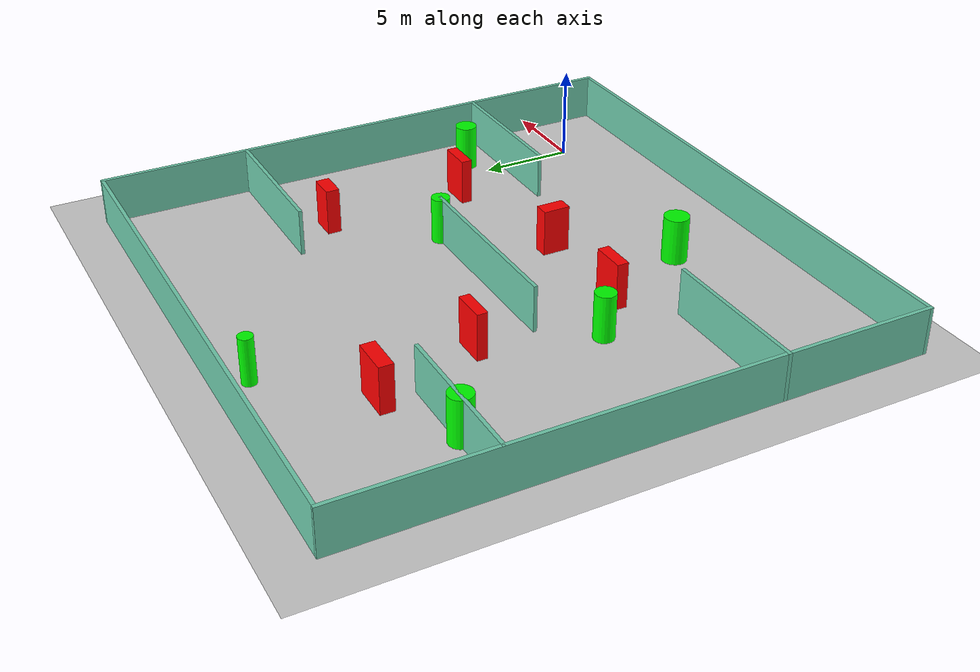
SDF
<sdf version="1.7">
 <world name="default">
  <light name="sun" type="directional">
   <pose>0 0 10 0 -0 0</pose>
   <diffuse>0.8 0.8 0.8 1</diffuse>
   <specular>0.2 0.2 0.2 1</specular>
   <attenuation>
    <range>1000</range>
    <constant>0.9</constant>
    <linear>0.01</linear>
    <quadratic>0.001</quadratic>
   </attenuation>
   <direction>-0.5 0.1 -0.9</direction>
   <spot><inner_angle>0</inner_angle><outer_angle>0</outer_angle><falloff>0</falloff></spot>
  </light>
  <model name="ground_plane">
   <static>1</static>
   <link name="link">
    <collision name="collision">
     <geometry><plane><normal>0 0 1</normal><size>100 100</size></plane></geometry>
     <surface>
      <contact><collide_bitmask>65535</collide_bitmask></contact>
      <friction><ode><mu>100</mu><mu2>50</mu2></ode></friction>
     </surface>
    </collision>
    <visual name="visual">
     <cast_shadows>0</cast_shadows>
     <geometry><plane><normal>0 0 1</normal><size>100 100</size></plane></geometry>
     <material>
      <script><uri>file://media/materials/scripts/gazebo.material</uri><name>Gazebo/Grey</name></script>
     </material>
    </visual>
   </link>
  </model>
  <gravity>0 0 -9.8</gravity>
  <magnetic_field>6e-06 2.3e-05 -4.2e-05</magnetic_field>
  <atmosphere type="adiabatic"/>
  <physics type="ode">
   <max_step_size>0.001</max_step_size>
   <real_time_factor>1</real_time_factor>
   <real_time_update_rate>1000</real_time_update_rate>
  </physics>
  <scene><ambient>0.4 0.4 0.4 1</ambient><background>0.7 0.7 0.7 1</background><shadows>1</shadows></scene>
  <spherical_coordinates>
   <surface_model>EARTH_WGS84</surface_model>
   <latitude_deg>0</latitude_deg>
   <longitude_deg>0</longitude_deg>
   <elevation>0</elevation>
   <heading_deg>0</heading_deg>
  </spherical_coordinates>
  <model name="my_base_walls">
   <link name="Wall_10">
    <collision name="Wall_10_Collision">
     <geometry><box><size>8.2 0.2 2.5</size></box></geometry>
     <pose>0 0 1.25 0 -0 0</pose>
    </collision>
    <visual name="Wall_10_Visual">
     <pose>0 0 1.25 0 -0 0</pose>
     <geometry><box><size>8.2 0.2 2.5</size></box></geometry>
     <material>
      <script><uri>file://media/materials/scripts/gazebo.material</uri><name>Gazebo/Grey</name></script>
      <ambient>0.435294 0.796078 0.67451 1</ambient>
     </material>
     <meta><layer>0</layer></meta>
    </visual>
    <pose>-11 -7 0 0 -0 0</pose>
   </link>
   <link name="Wall_12">
    <collision name="Wall_12_Collision">
     <geometry><box><size>8.2 0.2 2.5</size></box></geometry>
     <pose>0 0 1.25 0 -0 0</pose>
    </collision>
    <visual name="Wall_12_Visual">
     <pose>0 0 1.25 0 -0 0</pose>
     <geometry><box><size>8.2 0.2 2.5</size></box></geometry>
     <material>
      <script><uri>file://media/materials/scripts/gazebo.material</uri><name>Gazebo/Grey</name></script>
      <ambient>0.435294 0.796078 0.67451 1</ambient>
     </material>
     <meta><layer>0</layer></meta>
    </visual>
    <pose>-11 7 0 0 -0 0</pose>
   </link>
   <link name="Wall_14">
    <collision name="Wall_14_Collision">
     <geometry><box><size>8.2 0.2 2.5</size></box></geometry>
     <pose>0 0 1.25 0 -0 0</pose>
    </collision>
    <visual name="Wall_14_Visual">
     <pose>0 0 1.25 0 -0 0</pose>
     <geometry><box><size>8.2 0.2 2.5</size></box></geometry>
     <material>
      <script><uri>file://media/materials/scripts/gazebo.material</uri><name>Gazebo/Grey</name></script>
      <ambient>0.435294 0.796078 0.67451 1</ambient>
     </material>
     <meta><layer>0</layer></meta>
    </visual>
    <pose>11 7 0 0 -0 3.14159</pose>
   </link>
   <link name="Wall_16">
    <collision name="Wall_16_Collision">
     <geometry><box><size>10.2 0.2 2.5</size></box></geometry>
     <pose>0 0 1.25 0 -0 0</pose>
    </collision>
    <visual name="Wall_16_Visual">
     <pose>0 0 1.25 0 -0 0</pose>
     <geometry><box><size>10.2 0.2 2.5</size></box></geometry>
     <material>
      <script><uri>file://media/materials/scripts/gazebo.material</uri><name>Gazebo/Grey</name></script>
      <ambient>0.435294 0.796078 0.67451 1</ambient>
     </material>
     <meta><layer>0</layer></meta>
    </visual>
    <pose>0 0 0 0 -0 3.14159</pose>
   </link>
   <link name="Wall_2">
    <collision name="Wall_2_Collision">
     <geometry><box><size>30.2 0.2 2.5</size></box></geometry>
     <pose>0 0 1.25 0 -0 0</pose>
    </collision>
    <visual name="Wall_2_Visual">
     <pose>0 0 1.25 0 -0 0</pose>
     <geometry><box><size>30.2 0.2 2.5</size></box></geometry>
     <material>
      <script><uri>file://media/materials/scripts/gazebo.material</uri><name>Gazebo/Grey</name></script>
      <ambient>0.435294 0.796078 0.67451 1</ambient>
     </material>
     <meta><layer>0</layer></meta>
    </visual>
    <pose>0 -15 0 0 -0 3.14159</pose>
   </link>
   <link name="Wall_3">
    <collision name="Wall_3_Collision">
     <geometry><box><size>30.2 0.2 2.5</size></box></geometry>
     <pose>0 0 1.25 0 -0 0</pose>
    </collision>
    <visual name="Wall_3_Visual">
     <pose>0 0 1.25 0 -0 0</pose>
     <geometry><box><size>30.2 0.2 2.5</size></box></geometry>
     <material>
      <script><uri>file://media/materials/scripts/gazebo.material</uri><name>Gazebo/Grey</name></script>
      <ambient>0.435294 0.796078 0.67451 1</ambient>
     </material>
     <meta><layer>0</layer></meta>
    </visual>
    <pose>-15 0 0 0 -0 1.5708</pose>
   </link>
   <link name="Wall_4">
    <collision name="Wall_4_Collision">
     <geometry><box><size>30.2 0.2 2.5</size></box></geometry>
     <pose>0 0 1.25 0 -0 0</pose>
    </collision>
    <visual name="Wall_4_Visual">
     <pose>0 0 1.25 0 -0 0</pose>
     <geometry><box><size>30.2 0.2 2.5</size></box></geometry>
     <material>
      <script><uri>file://media/materials/scripts/gazebo.material</uri><name>Gazebo/Grey</name></script>
      <ambient>0.435294 0.796078 0.67451 1</ambient>
     </material>
     <meta><layer>0</layer></meta>
    </visual>
    <pose>0 15 0 0 -0 0</pose>
   </link>
   <link name="Wall_6">
    <collision name="Wall_6_Collision">
     <geometry><box><size>30.2 0.2 2.5</size></box></geometry>
     <pose>0 0 1.25 0 -0 0</pose>
    </collision>
    <visual name="Wall_6_Visual">
     <pose>0 0 1.25 0 -0 0</pose>
     <geometry><box><size>30.2 0.2 2.5</size></box></geometry>
     <material>
      <script><uri>file://media/materials/scripts/gazebo.material</uri><name>Gazebo/Grey</name></script>
      <ambient>0.435294 0.796078 0.67451 1</ambient>
     </material>
     <meta><layer>0</layer></meta>
    </visual>
    <pose>15 0 0 0 -0 1.5708</pose>
   </link>
   <link name="Wall_8">
    <collision name="Wall_8_Collision">
     <geometry><box><size>8.2 0.2 2.5</size></box></geometry>
     <pose>0 0 1.25 0 -0 0</pose>
    </collision>
    <visual name="Wall_8_Visual">
     <pose>0 0 1.25 0 -0 0</pose>
     <geometry><box><size>8.2 0.2 2.5</size></box></geometry>
     <material>
      <script><uri>file://media/materials/scripts/gazebo.material</uri><name>Gazebo/Grey</name></script>
      <ambient>0.435294 0.796078 0.67451 1</ambient>
     </material>
     <meta><layer>0</layer></meta>
    </visual>
    <pose>11 -7 0 0 -0 3.14159</pose>
   </link>
   <static>1</static>
   <pose>-11 11 0 0 -0 0</pose>
  </model>
  <model name="cylinder1">
   <static>1</static>
   <link name="link">
    <inertial>
     <mass>1</mass>
     <inertia><ixx>0.5</ixx><ixy>0</ixy><ixz>0</ixz><iyy>0.5</iyy><iyz>0</iyz><izz>1</izz></inertia>
    </inertial>
    <collision name="collision">
     <geometry><cylinder><radius>0.5449803384438681</radius><length>2.5</length></cylinder></geometry>
    </collision>
    <visual name="visual">
     <geometry><cylinder><radius>0.5449803384438681</radius><length>2.5</length></cylinder></geometry>
     <material>
      <ambient>0 1 0 1</ambient>
      <diffuse>0 1 0 1</diffuse>
      <specular>0.1 0.1 0.1 1</specular>
      <emissive>0 0 0 0</emissive>
     </material>
    </visual>
   </link>
   <pose>-18.03612937118995 8.379920408083322 1.25 0 0 0</pose>
  </model>
  <model name="cylinder2">
   <static>1</static>
   <link name="link">
    <inertial>
     <mass>1</mass>
     <inertia><ixx>0.5</ixx><ixy>0</ixy><ixz>0</ixz><iyy>0.5</iyy><iyz>0</iyz><izz>1</izz></inertia>
    </inertial>
    <collision name="collision">
     <geometry><cylinder><radius>0.617436711577893</radius><length>2.5</length></cylinder></geometry>
    </collision>
    <visual name="visual">
     <geometry><cylinder><radius>0.617436711577893</radius><length>2.5</length></cylinder></geometry>
     <material>
      <ambient>0 1 0 1</ambient>
      <diffuse>0 1 0 1</diffuse>
      <specular>0.1 0.1 0.1 1</specular>
      <emissive>0 0 0 0</emissive>
     </material>
    </visual>
   </link>
   <pose>-22.0535196563039 17.924155467514073 1.25 0 0 0</pose>
  </model>
  <model name="cylinder3">
   <static>1</static>
   <link name="link">
    <inertial>
     <mass>1</mass>
     <inertia><ixx>0.5</ixx><ixy>0</ixy><ixz>0</ixz><iyy>0.5</iyy><iyz>0</iyz><izz>1</izz></inertia>
    </inertial>
    <collision name="collision">
     <geometry><cylinder><radius>0.5907839855573586</radius><length>2.5</length></cylinder></geometry>
    </collision>
    <visual name="visual">
     <geometry><cylinder><radius>0.5907839855573586</radius><length>2.5</length></cylinder></geometry>
     <material>
      <ambient>0 1 0 1</ambient>
      <diffuse>0 1 0 1</diffuse>
      <specular>0.1 0.1 0.1 1</specular>
      <emissive>0 0 0 0</emissive>
     </material>
    </visual>
   </link>
   <pose>1.2182910981819077 5.826071929190407 1.25 0 0 0</pose>
  </model>
  <model name="cylinder4">
   <static>1</static>
   <link name="link">
    <inertial>
     <mass>1</mass>
     <inertia><ixx>0.5</ixx><ixy>0</ixy><ixz>0</ixz><iyy>0.5</iyy><iyz>0</iyz><izz>1</izz></inertia>
    </inertial>
    <collision name="collision">
     <geometry><cylinder><radius>0.3750544410946717</radius><length>2.5</length></cylinder></geometry>
    </collision>
    <visual name="visual">
     <geometry><cylinder><radius>0.3750544410946717</radius><length>2.5</length></cylinder></geometry>
     <material>
      <ambient>0 1 0 1</ambient>
      <diffuse>0 1 0 1</diffuse>
      <specular>0.1 0.1 0.1 1</specular>
      <emissive>0 0 0 0</emissive>
     </material>
    </visual>
   </link>
   <pose>-13.821551603457355 24.390073602995287 1.25 0 0 0</pose>
  </model>
  <model name="cylinder5">
   <static>1</static>
   <link name="link">
    <inertial>
     <mass>1</mass>
     <inertia><ixx>0.5</ixx><ixy>0</ixy><ixz>0</ixz><iyy>0.5</iyy><iyz>0</iyz><izz>1</izz></inertia>
    </inertial>
    <collision name="collision">
     <geometry><cylinder><radius>0.4936837477861693</radius><length>2.5</length></cylinder></geometry>
    </collision>
    <visual name="visual">
     <geometry><cylinder><radius>0.4936837477861693</radius><length>2.5</length></cylinder></geometry>
     <material>
      <ambient>0 1 0 1</ambient>
      <diffuse>0 1 0 1</diffuse>
      <specular>0.1 0.1 0.1 1</specular>
      <emissive>0 0 0 0</emissive>
     </material>
    </visual>
   </link>
   <pose>-5.998413273852581 10.984928814238692 1.25 0 0 0</pose>
  </model>
  <model name="cylinder6">
   <static>1</static>
   <link name="link">
    <inertial>
     <mass>1</mass>
     <inertia><ixx>0.5</ixx><ixy>0</ixy><ixz>0</ixz><iyy>0.5</iyy><iyz>0</iyz><izz>1</izz></inertia>
    </inertial>
    <collision name="collision">
     <geometry><cylinder><radius>0.6736502876310293</radius><length>2.5</length></cylinder></geometry>
    </collision>
    <visual name="visual">
     <geometry><cylinder><radius>0.6736502876310293</radius><length>2.5</length></cylinder></geometry>
     <material>
      <ambient>0 1 0 1</ambient>
      <diffuse>0 1 0 1</diffuse>
      <specular>0.1 0.1 0.1 1</specular>
      <emissive>0 0 0 0</emissive>
     </material>
    </visual>
   </link>
   <pose>-13.382197653279636 1.2828792700520104 1.25 0 0 0</pose>
  </model>
  <model name="box1">
   <static>1</static>
   <link name="link">
    <inertial>
     <mass>1</mass>
     <inertia><ixx>0.083</ixx><ixy>0</ixy><ixz>0</ixz><iyy>0.083</iyy><iyz>0</iyz><izz>0.083</izz></inertia>
    </inertial>
    <collision name="collision">
     <geometry><box><size>0.7961097579241103 1.4426703791445765 2.5</size></box></geometry>
    </collision>
    <visual name="visual">
     <geometry><box><size>0.7961097579241103 1.4426703791445765 2.5</size></box></geometry>
     <material>
      <ambient>1 0 0 1</ambient>
      <diffuse>1 0 0 1</diffuse>
      <specular>0.1 0.1 0.1 1</specular>
      <emissive>0 0 0 0</emissive>
     </material>
    </visual>
    <sensor name="my_contact" type="contact">
     <contact><collision>box_collision</collision><topic>__default_topic__</topic></contact>
    </sensor>
   </link>
   <pose>-9.596196932837856 6.31806072438434 1.25 0 0 0</pose>
  </model>
  <model name="box2">
   <static>1</static>
   <link name="link">
    <inertial>
     <mass>1</mass>
     <inertia><ixx>0.083</ixx><ixy>0</ixy><ixz>0</ixz><iyy>0.083</iyy><iyz>0</iyz><izz>0.083</izz></inertia>
    </inertial>
    <collision name="collision">
     <geometry><box><size>1.4393545784643824 0.7364708772800701 2.5</size></box></geometry>
    </collision>
    <visual name="visual">
     <geometry><box><size>1.4393545784643824 0.7364708772800701 2.5</size></box></geometry>
     <material>
      <ambient>1 0 0 1</ambient>
      <diffuse>1 0 0 1</diffuse>
      <specular>0.1 0.1 0.1 1</specular>
      <emissive>0 0 0 0</emissive>
     </material>
    </visual>
    <sensor name="my_contact" type="contact">
     <contact><collision>box_collision</collision><topic>__default_topic__</topic></contact>
    </sensor>
   </link>
   <pose>-2.026601596564884 15.666831135965946 1.25 0 0 0</pose>
  </model>
  <model name="box3">
   <static>1</static>
   <link name="link">
    <inertial>
     <mass>1</mass>
     <inertia><ixx>0.083</ixx><ixy>0</ixy><ixz>0</ixz><iyy>0.083</iyy><iyz>0</iyz><izz>0.083</izz></inertia>
    </inertial>
    <collision name="collision">
     <geometry><box><size>1.8171329226702553 0.5645596213911019 2.5</size></box></geometry>
    </collision>
    <visual name="visual">
     <geometry><box><size>1.8171329226702553 0.5645596213911019 2.5</size></box></geometry>
     <material>
      <ambient>1 0 0 1</ambient>
      <diffuse>1 0 0 1</diffuse>
      <specular>0.1 0.1 0.1 1</specular>
      <emissive>0 0 0 0</emissive>
     </material>
    </visual>
    <sensor name="my_contact" type="contact">
     <contact><collision>box_collision</collision><topic>__default_topic__</topic></contact>
    </sensor>
   </link>
   <pose>-16.15617214533235 14.298976574802275 1.25 0 0 0</pose>
  </model>
  <model name="box4">
   <static>1</static>
   <link name="link">
    <inertial>
     <mass>1</mass>
     <inertia><ixx>0.083</ixx><ixy>0</ixy><ixz>0</ixz><iyy>0.083</iyy><iyz>0</iyz><izz>0.083</izz></inertia>
    </inertial>
    <collision name="collision">
     <geometry><box><size>1.824991990351494 0.6205126449304783 2.5</size></box></geometry>
    </collision>
    <visual name="visual">
     <geometry><box><size>1.824991990351494 0.6205126449304783 2.5</size></box></geometry>
     <material>
      <ambient>1 0 0 1</ambient>
      <diffuse>1 0 0 1</diffuse>
      <specular>0.1 0.1 0.1 1</specular>
      <emissive>0 0 0 0</emissive>
     </material>
    </visual>
    <sensor name="my_contact" type="contact">
     <contact><collision>box_collision</collision><topic>__default_topic__</topic></contact>
    </sensor>
   </link>
   <pose>-15.32307514809545 6.285244467029267 1.25 0 0 0</pose>
  </model>
  <model name="box5">
   <static>1</static>
   <link name="link">
    <inertial>
     <mass>1</mass>
     <inertia><ixx>0.083</ixx><ixy>0</ixy><ixz>0</ixz><iyy>0.083</iyy><iyz>0</iyz><izz>0.083</izz></inertia>
    </inertial>
    <collision name="collision">
     <geometry><box><size>1.8148937171631305 0.5784808749039938 2.5</size></box></geometry>
    </collision>
    <visual name="visual">
     <geometry><box><size>1.8148937171631305 0.5784808749039938 2.5</size></box></geometry>
     <material>
      <ambient>1 0 0 1</ambient>
      <diffuse>1 0 0 1</diffuse>
      <specular>0.1 0.1 0.1 1</specular>
      <emissive>0 0 0 0</emissive>
     </material>
    </visual>
    <sensor name="my_contact" type="contact">
     <contact><collision>box_collision</collision><topic>__default_topic__</topic></contact>
    </sensor>
   </link>
   <pose>-1.9935204642042237 7.885472382132734 1.25 0 0 0</pose>
  </model>
  <model name="box6">
   <static>1</static>
   <link name="link">
    <inertial>
     <mass>1</mass>
     <inertia><ixx>0.083</ixx><ixy>0</ixy><ixz>0</ixz><iyy>0.083</iyy><iyz>0</iyz><izz>0.083</izz></inertia>
    </inertial>
    <collision name="collision">
     <geometry><box><size>2.000655920009891 0.7545237224215382 2.5</size></box></geometry>
    </collision>
    <visual name="visual">
     <geometry><box><size>2.000655920009891 0.7545237224215382 2.5</size></box></geometry>
     <material>
      <ambient>1 0 0 1</ambient>
      <diffuse>1 0 0 1</diffuse>
      <specular>0.1 0.1 0.1 1</specular>
      <emissive>0 0 0 0</emissive>
     </material>
    </visual>
    <sensor name="my_contact" type="contact">
     <contact><collision>box_collision</collision><topic>__default_topic__</topic></contact>
    </sensor>
   </link>
   <pose>-17.828823826897086 19.84944780778665 1.25 0 0 0</pose>
  </model>
 </world>
</sdf>
